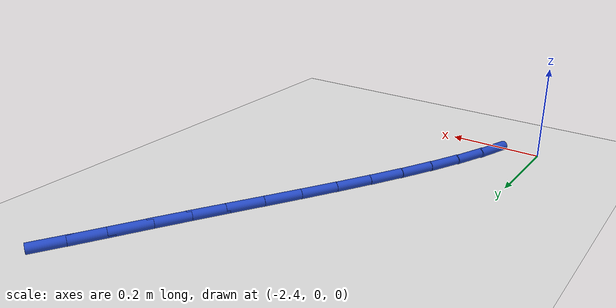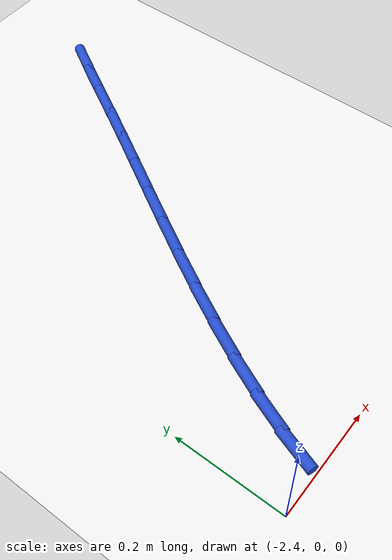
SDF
<sdf version="1.6">
 <world name="default">
  <model name="ground_plane">
   <static>1</static>
   <link name="link">
    <collision name="collision">
     <geometry><plane><normal>0 0 1</normal><size>100 100</size></plane></geometry>
     <surface><friction><ode><mu>100</mu><mu2>50</mu2></ode></friction></surface>
    </collision>
    <visual name="visual">
     <cast_shadows>0</cast_shadows>
     <geometry><plane><normal>0 0 1</normal><size>100 100</size></plane></geometry>
     <material>
      <script><uri>file://media/materials/scripts/gazebo.material</uri><name>Gazebo/WhiteGlow</name></script>
     </material>
    </visual>
   </link>
  </model>
  <model name="line">
   <link name="link_41">
    <pose>-1.8595304566145316 0.8654318599116363 0.01 0 1.57 1.032172135581094</pose>
    <collision name="collision">
     <geometry><cylinder><radius>0.01</radius><length>0.08</length></cylinder></geometry>
    </collision>
    <visual name="visual">
     <material>
      <script><name>Gazebo/Blue</name><uri>file://media/materials/scripts/gazebo.material</uri></script>
     </material>
     <geometry><cylinder><radius>0.01</radius><length>0.08</length></cylinder></geometry>
    </visual>
   </link>
   <link name="link_42">
    <pose>-1.8930883980625477 0.8092736748798056 0.01 0 1.57 1.04485572370764</pose>
    <collision name="collision">
     <geometry><cylinder><radius>0.01</radius><length>0.08</length></cylinder></geometry>
    </collision>
    <visual name="visual">
     <material>
      <script><name>Gazebo/Blue</name><uri>file://media/materials/scripts/gazebo.material</uri></script>
     </material>
     <geometry><cylinder><radius>0.01</radius><length>0.08</length></cylinder></geometry>
    </visual>
   </link>
   <link name="link_43">
    <pose>-1.9266090438405594 0.7515269436546717 0.01 0 1.57 1.045187359860186</pose>
    <collision name="collision">
     <geometry><cylinder><radius>0.01</radius><length>0.08</length></cylinder></geometry>
    </collision>
    <visual name="visual">
     <material>
      <script><name>Gazebo/Blue</name><uri>file://media/materials/scripts/gazebo.material</uri></script>
     </material>
     <geometry><cylinder><radius>0.01</radius><length>0.08</length></cylinder></geometry>
    </visual>
   </link>
   <link name="link_44">
    <pose>-1.9610927657648176 0.6920756990795415 0.01 0 1.57 1.0364915018790004</pose>
    <collision name="collision">
     <geometry><cylinder><radius>0.01</radius><length>0.08</length></cylinder></geometry>
    </collision>
    <visual name="visual">
     <material>
      <script><name>Gazebo/Blue</name><uri>file://media/materials/scripts/gazebo.material</uri></script>
     </material>
     <geometry><cylinder><radius>0.01</radius><length>0.08</length></cylinder></geometry>
    </visual>
   </link>
   <link name="link_45">
    <pose>-1.9973158421344386 0.6308585303873449 0.01 0 1.57 1.0306006042015121</pose>
    <collision name="collision">
     <geometry><cylinder><radius>0.01</radius><length>0.08</length></cylinder></geometry>
    </collision>
    <visual name="visual">
     <material>
      <script><name>Gazebo/Blue</name><uri>file://media/materials/scripts/gazebo.material</uri></script>
     </material>
     <geometry><cylinder><radius>0.01</radius><length>0.08</length></cylinder></geometry>
    </visual>
   </link>
   <link name="link_46">
    <pose>-2.0349641658158424 0.5680794851485159 0.01 0 1.57 1.0304393579262465</pose>
    <collision name="collision">
     <geometry><cylinder><radius>0.01</radius><length>0.08</length></cylinder></geometry>
    </collision>
    <visual name="visual">
     <material>
      <script><name>Gazebo/Blue</name><uri>file://media/materials/scripts/gazebo.material</uri></script>
     </material>
     <geometry><cylinder><radius>0.01</radius><length>0.08</length></cylinder></geometry>
    </visual>
   </link>
   <link name="link_47">
    <pose>-2.0733924697760524 0.5040232330270205 0.01 0 1.57 1.035664672528876</pose>
    <collision name="collision">
     <geometry><cylinder><radius>0.01</radius><length>0.08</length></cylinder></geometry>
    </collision>
    <visual name="visual">
     <material>
      <script><name>Gazebo/Blue</name><uri>file://media/materials/scripts/gazebo.material</uri></script>
     </material>
     <geometry><cylinder><radius>0.01</radius><length>0.08</length></cylinder></geometry>
    </visual>
   </link>
   <link name="link_48">
    <pose>-2.1119554111341676 0.43897446215228103 0.01 0 1.57 1.046198483648653</pose>
    <collision name="collision">
     <geometry><cylinder><radius>0.01</radius><length>0.08</length></cylinder></geometry>
    </collision>
    <visual name="visual">
     <material>
      <script><name>Gazebo/Blue</name><uri>file://media/materials/scripts/gazebo.material</uri></script>
     </material>
     <geometry><cylinder><radius>0.01</radius><length>0.08</length></cylinder></geometry>
    </visual>
   </link>
   <link name="link_49">
    <pose>-2.150007647009287 0.37321786065372 0.01 0 1.57 1.0622019003286007</pose>
    <collision name="collision">
     <geometry><cylinder><radius>0.01</radius><length>0.08</length></cylinder></geometry>
    </collision>
    <visual name="visual">
     <material>
      <script><name>Gazebo/Blue</name><uri>file://media/materials/scripts/gazebo.material</uri></script>
     </material>
     <geometry><cylinder><radius>0.01</radius><length>0.08</length></cylinder></geometry>
    </visual>
   </link>
   <link name="link_50">
    <pose>-2.1869038345205074 0.3070381166607594 0.01 0 1.57 1.0840718717016464</pose>
    <collision name="collision">
     <geometry><cylinder><radius>0.01</radius><length>0.08</length></cylinder></geometry>
    </collision>
    <visual name="visual">
     <material>
      <script><name>Gazebo/Blue</name><uri>file://media/materials/scripts/gazebo.material</uri></script>
     </material>
     <geometry><cylinder><radius>0.01</radius><length>0.08</length></cylinder></geometry>
    </visual>
   </link>
   <link name="link_51">
    <pose>-2.221998630786928 0.24071991830282197 0.01 0 1.57 1.1124570486918879</pose>
    <collision name="collision">
     <geometry><cylinder><radius>0.01</radius><length>0.08</length></cylinder></geometry>
    </collision>
    <visual name="visual">
     <material>
      <script><name>Gazebo/Blue</name><uri>file://media/materials/scripts/gazebo.material</uri></script>
     </material>
     <geometry><cylinder><radius>0.01</radius><length>0.08</length></cylinder></geometry>
    </visual>
   </link>
   <link name="link_52">
    <pose>-2.2546466929276465 0.17454795370932968 0.01 0 1.57 1.1482901189036665</pose>
    <collision name="collision">
     <geometry><cylinder><radius>0.01</radius><length>0.08</length></cylinder></geometry>
    </collision>
    <visual name="visual">
     <material>
      <script><name>Gazebo/Blue</name><uri>file://media/materials/scripts/gazebo.material</uri></script>
     </material>
     <geometry><cylinder><radius>0.01</radius><length>0.08</length></cylinder></geometry>
    </visual>
   </link>
   <link name="link_53">
    <pose>-2.284202678061762 0.10880691100970503 0.01 0 1.57 1.1928327518279247</pose>
    <collision name="collision">
     <geometry><cylinder><radius>0.01</radius><length>0.08</length></cylinder></geometry>
    </collision>
    <visual name="visual">
     <material>
      <script><name>Gazebo/Blue</name><uri>file://media/materials/scripts/gazebo.material</uri></script>
     </material>
     <geometry><cylinder><radius>0.01</radius><length>0.08</length></cylinder></geometry>
    </visual>
   </link>
   <link name="link_54">
    <pose>-2.3100212433083724 0.043781478333370295 0.01 0 1.57 1.247723721196555</pose>
    <collision name="collision">
     <geometry><cylinder><radius>0.01</radius><length>0.08</length></cylinder></geometry>
    </collision>
    <visual name="visual">
     <material>
      <script><name>Gazebo/Blue</name><uri>file://media/materials/scripts/gazebo.material</uri></script>
     </material>
     <geometry><cylinder><radius>0.01</radius><length>0.08</length></cylinder></geometry>
    </visual>
   </link>
  </model>
 </world>
</sdf>
